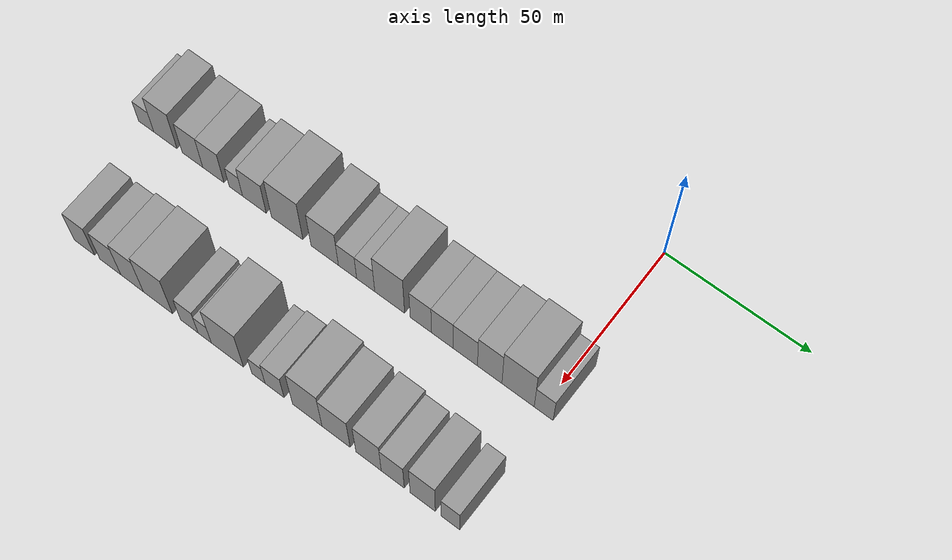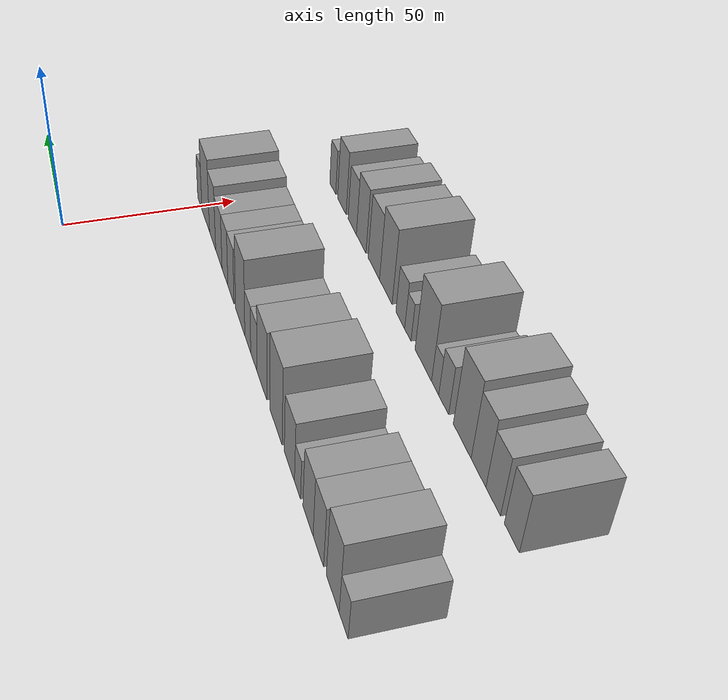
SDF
<sdf version="1.6">
 <world name="default">
  <model name="building_18">
   <static>1</static>
   <pose>50.0000 -144.3886 0 0.000000 0.000000 0.000000</pose>
   <link name="link">
    <pose>0 0 6.00 0 0 0</pose>
    <collision name="collision"><geometry><box><size>20.0000 5.9963 12.0000</size></box></geometry></collision>
    <visual name="visual">
     <cast_shadows>0</cast_shadows>
     <geometry><box><size>20.0000 5.9963 12.0000</size></box></geometry>
     <material>
      <script>
       <uri>model://grey_wall/materials/scripts</uri>
       <uri>model://grey_wall/materials/textures</uri>
       <name>vrc/grey_wall</name>
      </script>
     </material>
    </visual>
   </link>
  </model>
  <model name="building_19">
   <static>1</static>
   <pose>50.0000 -136.8716 0 0.000000 0.000000 0.000000</pose>
   <link name="link">
    <pose>0 0 10.50 0 0 0</pose>
    <collision name="collision"><geometry><box><size>20.0000 9.0378 21.0000</size></box></geometry></collision>
    <visual name="visual">
     <cast_shadows>0</cast_shadows>
     <geometry><box><size>20.0000 9.0378 21.0000</size></box></geometry>
     <material>
      <script>
       <uri>model://grey_wall/materials/scripts</uri>
       <uri>model://grey_wall/materials/textures</uri>
       <name>vrc/grey_wall</name>
      </script>
     </material>
    </visual>
   </link>
  </model>
  <model name="building_20">
   <static>1</static>
   <pose>50.0000 -126.3946 0 0.000000 0.000000 0.000000</pose>
   <link name="link">
    <pose>0 0 9.00 0 0 0</pose>
    <collision name="collision"><geometry><box><size>20.0000 7.9164 18.0000</size></box></geometry></collision>
    <visual name="visual">
     <cast_shadows>0</cast_shadows>
     <geometry><box><size>20.0000 7.9164 18.0000</size></box></geometry>
     <material>
      <script>
       <uri>model://grey_wall/materials/scripts</uri>
       <uri>model://grey_wall/materials/textures</uri>
       <name>vrc/grey_wall</name>
      </script>
     </material>
    </visual>
   </link>
  </model>
  <model name="building_21">
   <static>1</static>
   <pose>50.0000 -118.3697 0 0.000000 0.000000 0.000000</pose>
   <link name="link">
    <pose>0 0 9.00 0 0 0</pose>
    <collision name="collision"><geometry><box><size>20.0000 8.1333 18.0000</size></box></geometry></collision>
    <visual name="visual">
     <cast_shadows>0</cast_shadows>
     <geometry><box><size>20.0000 8.1333 18.0000</size></box></geometry>
     <material>
      <script>
       <uri>model://grey_wall/materials/scripts</uri>
       <uri>model://grey_wall/materials/textures</uri>
       <name>vrc/grey_wall</name>
      </script>
     </material>
    </visual>
   </link>
  </model>
  <model name="building_22">
   <static>1</static>
   <pose>50.0000 -109.7680 0 0.000000 0.000000 0.000000</pose>
   <link name="link">
    <pose>0 0 6.00 0 0 0</pose>
    <collision name="collision"><geometry><box><size>20.0000 5.0701 12.0000</size></box></geometry></collision>
    <visual name="visual">
     <cast_shadows>0</cast_shadows>
     <geometry><box><size>20.0000 5.0701 12.0000</size></box></geometry>
     <material>
      <script>
       <uri>model://grey_wall/materials/scripts</uri>
       <uri>model://grey_wall/materials/textures</uri>
       <name>vrc/grey_wall</name>
      </script>
     </material>
    </visual>
   </link>
  </model>
  <model name="building_23">
   <static>1</static>
   <pose>50.0000 -102.7718 0 0.000000 0.000000 0.000000</pose>
   <link name="link">
    <pose>0 0 9.00 0 0 0</pose>
    <collision name="collision"><geometry><box><size>20.0000 8.9224 18.0000</size></box></geometry></collision>
    <visual name="visual">
     <cast_shadows>0</cast_shadows>
     <geometry><box><size>20.0000 8.9224 18.0000</size></box></geometry>
     <material>
      <script>
       <uri>model://grey_wall/materials/scripts</uri>
       <uri>model://grey_wall/materials/textures</uri>
       <name>vrc/grey_wall</name>
      </script>
     </material>
    </visual>
   </link>
  </model>
  <model name="building_24">
   <static>1</static>
   <pose>50.0000 -90.4507 0 0.000000 0.000000 0.000000</pose>
   <link name="link">
    <pose>0 0 12.00 0 0 0</pose>
    <collision name="collision"><geometry><box><size>20.0000 11.7199 24.0000</size></box></geometry></collision>
    <visual name="visual">
     <cast_shadows>0</cast_shadows>
     <geometry><box><size>20.0000 11.7199 24.0000</size></box></geometry>
     <material>
      <script>
       <uri>model://grey_wall/materials/scripts</uri>
       <uri>model://grey_wall/materials/textures</uri>
       <name>vrc/grey_wall</name>
      </script>
     </material>
    </visual>
   </link>
  </model>
  <model name="building_25">
   <static>1</static>
   <pose>50.0000 -76.5439 0 0.000000 0.000000 0.000000</pose>
   <link name="link">
    <pose>0 0 10.50 0 0 0</pose>
    <collision name="collision"><geometry><box><size>20.0000 10.0936 21.0000</size></box></geometry></collision>
    <visual name="visual">
     <cast_shadows>0</cast_shadows>
     <geometry><box><size>20.0000 10.0936 21.0000</size></box></geometry>
     <material>
      <script>
       <uri>model://grey_wall/materials/scripts</uri>
       <uri>model://grey_wall/materials/textures</uri>
       <name>vrc/grey_wall</name>
      </script>
     </material>
    </visual>
   </link>
  </model>
  <model name="building_26">
   <static>1</static>
   <pose>50.0000 -68.1587 0 0.000000 0.000000 0.000000</pose>
   <link name="link">
    <pose>0 0 7.50 0 0 0</pose>
    <collision name="collision"><geometry><box><size>20.0000 6.6767 15.0000</size></box></geometry></collision>
    <visual name="visual">
     <cast_shadows>0</cast_shadows>
     <geometry><box><size>20.0000 6.6767 15.0000</size></box></geometry>
     <material>
      <script>
       <uri>model://grey_wall/materials/scripts</uri>
       <uri>model://grey_wall/materials/textures</uri>
       <name>vrc/grey_wall</name>
      </script>
     </material>
    </visual>
   </link>
  </model>
  <model name="building_27">
   <static>1</static>
   <pose>50.0000 -61.5330 0 0.000000 0.000000 0.000000</pose>
   <link name="link">
    <pose>0 0 7.50 0 0 0</pose>
    <collision name="collision"><geometry><box><size>20.0000 6.5746 15.0000</size></box></geometry></collision>
    <visual name="visual">
     <cast_shadows>0</cast_shadows>
     <geometry><box><size>20.0000 6.5746 15.0000</size></box></geometry>
     <material>
      <script>
       <uri>model://grey_wall/materials/scripts</uri>
       <uri>model://grey_wall/materials/textures</uri>
       <name>vrc/grey_wall</name>
      </script>
     </material>
    </visual>
   </link>
  </model>
  <model name="building_28">
   <static>1</static>
   <pose>50.0000 -52.8710 0 0.000000 0.000000 0.000000</pose>
   <link name="link">
    <pose>0 0 12.00 0 0 0</pose>
    <collision name="collision"><geometry><box><size>20.0000 10.7494 24.0000</size></box></geometry></collision>
    <visual name="visual">
     <cast_shadows>0</cast_shadows>
     <geometry><box><size>20.0000 10.7494 24.0000</size></box></geometry>
     <material>
      <script>
       <uri>model://grey_wall/materials/scripts</uri>
       <uri>model://grey_wall/materials/textures</uri>
       <name>vrc/grey_wall</name>
      </script>
     </material>
    </visual>
   </link>
  </model>
  <model name="building_29">
   <static>1</static>
   <pose>50.0000 -41.6983 0 0.000000 0.000000 0.000000</pose>
   <link name="link">
    <pose>0 0 9.00 0 0 0</pose>
    <collision name="collision"><geometry><box><size>20.0000 7.5961 18.0000</size></box></geometry></collision>
    <visual name="visual">
     <cast_shadows>0</cast_shadows>
     <geometry><box><size>20.0000 7.5961 18.0000</size></box></geometry>
     <material>
      <script>
       <uri>model://grey_wall/materials/scripts</uri>
       <uri>model://grey_wall/materials/textures</uri>
       <name>vrc/grey_wall</name>
      </script>
     </material>
    </visual>
   </link>
  </model>
  <model name="building_30">
   <static>1</static>
   <pose>50.0000 -34.1289 0 0.000000 0.000000 0.000000</pose>
   <link name="link">
    <pose>0 0 9.00 0 0 0</pose>
    <collision name="collision"><geometry><box><size>20.0000 7.5425 18.0000</size></box></geometry></collision>
    <visual name="visual">
     <cast_shadows>0</cast_shadows>
     <geometry><box><size>20.0000 7.5425 18.0000</size></box></geometry>
     <material>
      <script>
       <uri>model://grey_wall/materials/scripts</uri>
       <uri>model://grey_wall/materials/textures</uri>
       <name>vrc/grey_wall</name>
      </script>
     </material>
    </visual>
   </link>
  </model>
  <model name="building_31">
   <static>1</static>
   <pose>50.0000 -26.0431 0 0.000000 0.000000 0.000000</pose>
   <link name="link">
    <pose>0 0 9.00 0 0 0</pose>
    <collision name="collision"><geometry><box><size>20.0000 8.6293 18.0000</size></box></geometry></collision>
    <visual name="visual">
     <cast_shadows>0</cast_shadows>
     <geometry><box><size>20.0000 8.6293 18.0000</size></box></geometry>
     <material>
      <script>
       <uri>model://grey_wall/materials/scripts</uri>
       <uri>model://grey_wall/materials/textures</uri>
       <name>vrc/grey_wall</name>
      </script>
     </material>
    </visual>
   </link>
  </model>
  <model name="building_32">
   <static>1</static>
   <pose>50.0000 -17.4651 0 0.000000 0.000000 0.000000</pose>
   <link name="link">
    <pose>0 0 10.50 0 0 0</pose>
    <collision name="collision"><geometry><box><size>20.0000 8.5266 21.0000</size></box></geometry></collision>
    <visual name="visual">
     <cast_shadows>0</cast_shadows>
     <geometry><box><size>20.0000 8.5266 21.0000</size></box></geometry>
     <material>
      <script>
       <uri>model://grey_wall/materials/scripts</uri>
       <uri>model://grey_wall/materials/textures</uri>
       <name>vrc/grey_wall</name>
      </script>
     </material>
    </visual>
   </link>
  </model>
  <model name="building_33">
   <static>1</static>
   <pose>50.0000 -7.6380 0 0.000000 0.000000 0.000000</pose>
   <link name="link">
    <pose>0 0 12.00 0 0 0</pose>
    <collision name="collision"><geometry><box><size>20.0000 11.1276 24.0000</size></box></geometry></collision>
    <visual name="visual">
     <cast_shadows>0</cast_shadows>
     <geometry><box><size>20.0000 11.1276 24.0000</size></box></geometry>
     <material>
      <script>
       <uri>model://grey_wall/materials/scripts</uri>
       <uri>model://grey_wall/materials/textures</uri>
       <name>vrc/grey_wall</name>
      </script>
     </material>
    </visual>
   </link>
  </model>
  <model name="building_34">
   <static>1</static>
   <pose>50.0000 1.1589 0 0.000000 0.000000 0.000000</pose>
   <link name="link">
    <pose>0 0 7.50 0 0 0</pose>
    <collision name="collision"><geometry><box><size>20.0000 6.4662 15.0000</size></box></geometry></collision>
    <visual name="visual">
     <cast_shadows>0</cast_shadows>
     <geometry><box><size>20.0000 6.4662 15.0000</size></box></geometry>
     <material>
      <script>
       <uri>model://grey_wall/materials/scripts</uri>
       <uri>model://grey_wall/materials/textures</uri>
       <name>vrc/grey_wall</name>
      </script>
     </material>
    </visual>
   </link>
  </model>
  <model name="building_83">
   <static>1</static>
   <pose>90.0000 -132.5765 0 0.000000 0.000000 0.000000</pose>
   <link name="link">
    <pose>0 0 9.00 0 0 0</pose>
    <collision name="collision"><geometry><box><size>20.0000 7.7699 18.0000</size></box></geometry></collision>
    <visual name="visual">
     <cast_shadows>0</cast_shadows>
     <geometry><box><size>20.0000 7.7699 18.0000</size></box></geometry>
     <material>
      <script>
       <uri>model://grey_wall/materials/scripts</uri>
       <uri>model://grey_wall/materials/textures</uri>
       <name>vrc/grey_wall</name>
      </script>
     </material>
    </visual>
   </link>
  </model>
  <model name="building_84">
   <static>1</static>
   <pose>90.0000 -122.6760 0 0.000000 0.000000 0.000000</pose>
   <link name="link">
    <pose>0 0 9.00 0 0 0</pose>
    <collision name="collision"><geometry><box><size>20.0000 8.0311 18.0000</size></box></geometry></collision>
    <visual name="visual">
     <cast_shadows>0</cast_shadows>
     <geometry><box><size>20.0000 8.0311 18.0000</size></box></geometry>
     <material>
      <script>
       <uri>model://grey_wall/materials/scripts</uri>
       <uri>model://grey_wall/materials/textures</uri>
       <name>vrc/grey_wall</name>
      </script>
     </material>
    </visual>
   </link>
  </model>
  <model name="building_85">
   <static>1</static>
   <pose>90.0000 -114.4024 0 0.000000 0.000000 0.000000</pose>
   <link name="link">
    <pose>0 0 10.50 0 0 0</pose>
    <collision name="collision"><geometry><box><size>20.0000 8.5161 21.0000</size></box></geometry></collision>
    <visual name="visual">
     <cast_shadows>0</cast_shadows>
     <geometry><box><size>20.0000 8.5161 21.0000</size></box></geometry>
     <material>
      <script>
       <uri>model://grey_wall/materials/scripts</uri>
       <uri>model://grey_wall/materials/textures</uri>
       <name>vrc/grey_wall</name>
      </script>
     </material>
    </visual>
   </link>
  </model>
  <model name="building_86">
   <static>1</static>
   <pose>90.0000 -104.6756 0 0.000000 0.000000 0.000000</pose>
   <link name="link">
    <pose>0 0 12.00 0 0 0</pose>
    <collision name="collision"><geometry><box><size>20.0000 10.9374 24.0000</size></box></geometry></collision>
    <visual name="visual">
     <cast_shadows>0</cast_shadows>
     <geometry><box><size>20.0000 10.9374 24.0000</size></box></geometry>
     <material>
      <script>
       <uri>model://grey_wall/materials/scripts</uri>
       <uri>model://grey_wall/materials/textures</uri>
       <name>vrc/grey_wall</name>
      </script>
     </material>
    </visual>
   </link>
  </model>
  <model name="building_87">
   <static>1</static>
   <pose>90.0000 -92.9414 0 0.000000 0.000000 0.000000</pose>
   <link name="link">
    <pose>0 0 7.50 0 0 0</pose>
    <collision name="collision"><geometry><box><size>20.0000 6.5311 15.0000</size></box></geometry></collision>
    <visual name="visual">
     <cast_shadows>0</cast_shadows>
     <geometry><box><size>20.0000 6.5311 15.0000</size></box></geometry>
     <material>
      <script>
       <uri>model://grey_wall/materials/scripts</uri>
       <uri>model://grey_wall/materials/textures</uri>
       <name>vrc/grey_wall</name>
      </script>
     </material>
    </visual>
   </link>
  </model>
  <model name="building_88">
   <static>1</static>
   <pose>90.0000 -87.2424 0 0.000000 0.000000 0.000000</pose>
   <link name="link">
    <pose>0 0 6.00 0 0 0</pose>
    <collision name="collision"><geometry><box><size>20.0000 4.8669 12.0000</size></box></geometry></collision>
    <visual name="visual">
     <cast_shadows>0</cast_shadows>
     <geometry><box><size>20.0000 4.8669 12.0000</size></box></geometry>
     <material>
      <script>
       <uri>model://grey_wall/materials/scripts</uri>
       <uri>model://grey_wall/materials/textures</uri>
       <name>vrc/grey_wall</name>
      </script>
     </material>
    </visual>
   </link>
  </model>
  <model name="building_89">
   <static>1</static>
   <pose>90.0000 -78.9358 0 0.000000 0.000000 0.000000</pose>
   <link name="link">
    <pose>0 0 12.00 0 0 0</pose>
    <collision name="collision"><geometry><box><size>20.0000 11.7462 24.0000</size></box></geometry></collision>
    <visual name="visual">
     <cast_shadows>0</cast_shadows>
     <geometry><box><size>20.0000 11.7462 24.0000</size></box></geometry>
     <material>
      <script>
       <uri>model://grey_wall/materials/scripts</uri>
       <uri>model://grey_wall/materials/textures</uri>
       <name>vrc/grey_wall</name>
      </script>
     </material>
    </visual>
   </link>
  </model>
  <model name="building_90">
   <static>1</static>
   <pose>90.0000 -67.6528 0 0.000000 0.000000 0.000000</pose>
   <link name="link">
    <pose>0 0 6.00 0 0 0</pose>
    <collision name="collision"><geometry><box><size>20.0000 4.8198 12.0000</size></box></geometry></collision>
    <visual name="visual">
     <cast_shadows>0</cast_shadows>
     <geometry><box><size>20.0000 4.8198 12.0000</size></box></geometry>
     <material>
      <script>
       <uri>model://grey_wall/materials/scripts</uri>
       <uri>model://grey_wall/materials/textures</uri>
       <name>vrc/grey_wall</name>
      </script>
     </material>
    </visual>
   </link>
  </model>
  <model name="building_91">
   <static>1</static>
   <pose>90.0000 -61.8076 0 0.000000 0.000000 0.000000</pose>
   <link name="link">
    <pose>0 0 7.50 0 0 0</pose>
    <collision name="collision"><geometry><box><size>20.0000 6.8707 15.0000</size></box></geometry></collision>
    <visual name="visual">
     <cast_shadows>0</cast_shadows>
     <geometry><box><size>20.0000 6.8707 15.0000</size></box></geometry>
     <material>
      <script>
       <uri>model://grey_wall/materials/scripts</uri>
       <uri>model://grey_wall/materials/textures</uri>
       <name>vrc/grey_wall</name>
      </script>
     </material>
    </visual>
   </link>
  </model>
  <model name="building_92">
   <static>1</static>
   <pose>90.0000 -50.1270 0 0.000000 0.000000 0.000000</pose>
   <link name="link">
    <pose>0 0 12.00 0 0 0</pose>
    <collision name="collision"><geometry><box><size>20.0000 10.4905 24.0000</size></box></geometry></collision>
    <visual name="visual">
     <cast_shadows>0</cast_shadows>
     <geometry><box><size>20.0000 10.4905 24.0000</size></box></geometry>
     <material>
      <script>
       <uri>model://grey_wall/materials/scripts</uri>
       <uri>model://grey_wall/materials/textures</uri>
       <name>vrc/grey_wall</name>
      </script>
     </material>
    </visual>
   </link>
  </model>
  <model name="building_93">
   <static>1</static>
   <pose>90.0000 -39.9150 0 0.000000 0.000000 0.000000</pose>
   <link name="link">
    <pose>0 0 10.50 0 0 0</pose>
    <collision name="collision"><geometry><box><size>20.0000 9.9336 21.0000</size></box></geometry></collision>
    <visual name="visual">
     <cast_shadows>0</cast_shadows>
     <geometry><box><size>20.0000 9.9336 21.0000</size></box></geometry>
     <material>
      <script>
       <uri>model://grey_wall/materials/scripts</uri>
       <uri>model://grey_wall/materials/textures</uri>
       <name>vrc/grey_wall</name>
      </script>
     </material>
    </visual>
   </link>
  </model>
  <model name="building_94">
   <static>1</static>
   <pose>90.0000 -28.5266 0 0.000000 0.000000 0.000000</pose>
   <link name="link">
    <pose>0 0 10.50 0 0 0</pose>
    <collision name="collision"><geometry><box><size>20.0000 8.8432 21.0000</size></box></geometry></collision>
    <visual name="visual">
     <cast_shadows>0</cast_shadows>
     <geometry><box><size>20.0000 8.8432 21.0000</size></box></geometry>
     <material>
      <script>
       <uri>model://grey_wall/materials/scripts</uri>
       <uri>model://grey_wall/materials/textures</uri>
       <name>vrc/grey_wall</name>
      </script>
     </material>
    </visual>
   </link>
  </model>
  <model name="building_95">
   <static>1</static>
   <pose>90.0000 -20.1255 0 0.000000 0.000000 0.000000</pose>
   <link name="link">
    <pose>0 0 9.00 0 0 0</pose>
    <collision name="collision"><geometry><box><size>20.0000 7.9589 18.0000</size></box></geometry></collision>
    <visual name="visual">
     <cast_shadows>0</cast_shadows>
     <geometry><box><size>20.0000 7.9589 18.0000</size></box></geometry>
     <material>
      <script>
       <uri>model://grey_wall/materials/scripts</uri>
       <uri>model://grey_wall/materials/textures</uri>
       <name>vrc/grey_wall</name>
      </script>
     </material>
    </visual>
   </link>
  </model>
  <model name="building_96">
   <static>1</static>
   <pose>90.0000 -9.8461 0 0.000000 0.000000 0.000000</pose>
   <link name="link">
    <pose>0 0 10.50 0 0 0</pose>
    <collision name="collision"><geometry><box><size>20.0000 8.5999 21.0000</size></box></geometry></collision>
    <visual name="visual">
     <cast_shadows>0</cast_shadows>
     <geometry><box><size>20.0000 8.5999 21.0000</size></box></geometry>
     <material>
      <script>
       <uri>model://grey_wall/materials/scripts</uri>
       <uri>model://grey_wall/materials/textures</uri>
       <name>vrc/grey_wall</name>
      </script>
     </material>
    </visual>
   </link>
  </model>
  <model name="building_97">
   <static>1</static>
   <pose>90.0000 -0.3905 0 0.000000 0.000000 0.000000</pose>
   <link name="link">
    <pose>0 0 7.50 0 0 0</pose>
    <collision name="collision"><geometry><box><size>20.0000 6.3113 15.0000</size></box></geometry></collision>
    <visual name="visual">
     <cast_shadows>0</cast_shadows>
     <geometry><box><size>20.0000 6.3113 15.0000</size></box></geometry>
     <material>
      <script>
       <uri>model://grey_wall/materials/scripts</uri>
       <uri>model://grey_wall/materials/textures</uri>
       <name>vrc/grey_wall</name>
      </script>
     </material>
    </visual>
   </link>
  </model>
 </world>
</sdf>
